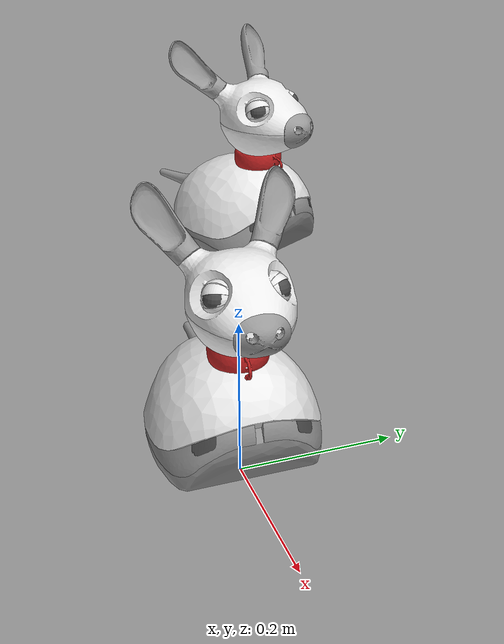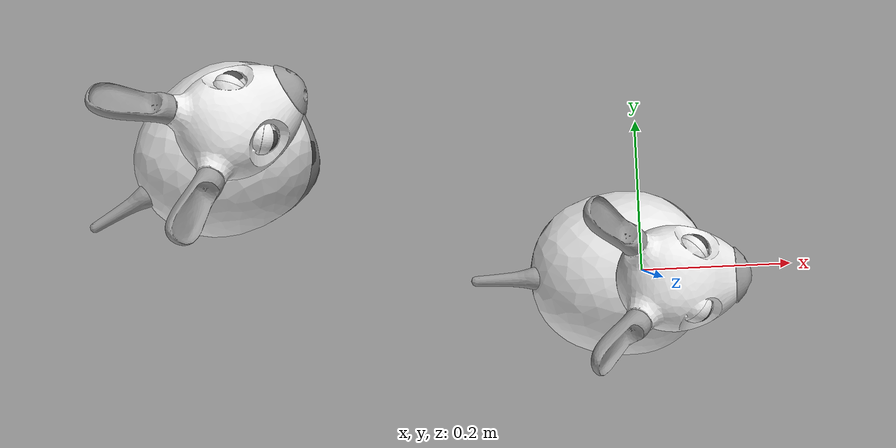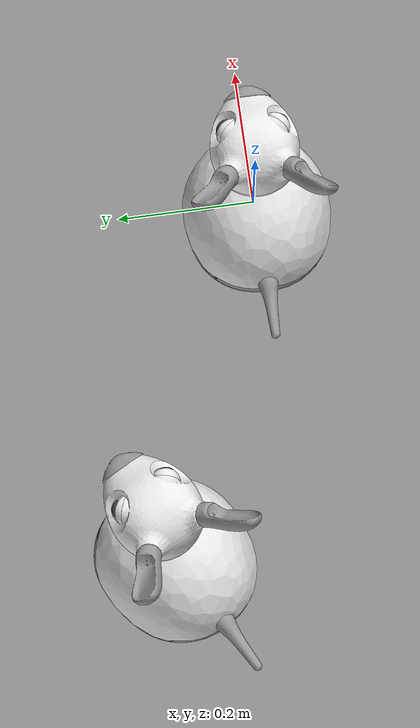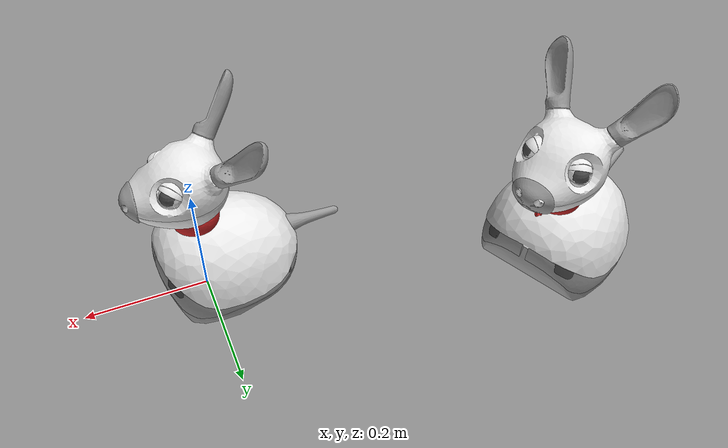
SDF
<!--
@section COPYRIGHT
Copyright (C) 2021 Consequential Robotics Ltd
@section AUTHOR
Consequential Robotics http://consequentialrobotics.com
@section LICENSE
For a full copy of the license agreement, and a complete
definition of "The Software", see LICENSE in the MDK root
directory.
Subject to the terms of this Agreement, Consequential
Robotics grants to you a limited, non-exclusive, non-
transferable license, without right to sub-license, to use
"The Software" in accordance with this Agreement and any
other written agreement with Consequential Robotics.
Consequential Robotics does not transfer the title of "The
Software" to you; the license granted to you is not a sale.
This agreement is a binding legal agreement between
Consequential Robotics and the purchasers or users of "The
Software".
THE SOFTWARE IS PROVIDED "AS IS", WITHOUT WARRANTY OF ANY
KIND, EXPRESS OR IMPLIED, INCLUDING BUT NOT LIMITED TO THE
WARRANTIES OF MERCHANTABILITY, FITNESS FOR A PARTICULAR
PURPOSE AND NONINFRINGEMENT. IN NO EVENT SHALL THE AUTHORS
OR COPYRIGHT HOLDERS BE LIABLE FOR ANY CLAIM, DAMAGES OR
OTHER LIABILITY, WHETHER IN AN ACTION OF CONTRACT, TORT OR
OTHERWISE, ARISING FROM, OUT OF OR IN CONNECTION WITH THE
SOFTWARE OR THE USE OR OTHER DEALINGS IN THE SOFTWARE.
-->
<sdf version="1.5">
 <world name="default">
  <physics name="default_physics" default="0" type="ode">
   <max_step_size>0.001</max_step_size>
   <real_time_factor>1</real_time_factor>
   <real_time_update_rate>1000</real_time_update_rate>
  </physics>
  <scene><ambient>0.4 0.4 0.4 1</ambient><background>0.7 0.7 0.7 1</background><shadows>0</shadows></scene>
  <light name="sun" type="directional">
   <pose>0 0 10 0 -0 0</pose>
   <diffuse>0.8 0.8 0.8 1</diffuse>
   <specular>0.1 0.1 0.1 1</specular>
   <attenuation>
    <range>1000</range>
    <constant>0.9</constant>
    <linear>0.01</linear>
    <quadratic>0.001</quadratic>
   </attenuation>
   <direction>-0.5 0.5 -1</direction>
  </light>
  <include><name>parent</name><uri>model://miro_model</uri></include>
  <include><name>child</name><uri>model://miro_model</uri><pose>-0.5 0.2 0.05 0 0 0.5</pose></include>
  <gravity>0 0 -9.8</gravity>
  <magnetic_field>6e-06 2.3e-05 -4.2e-05</magnetic_field>
  <atmosphere type="adiabatic"/>
  <spherical_coordinates>
   <surface_model>EARTH_WGS84</surface_model>
   <latitude_deg>0</latitude_deg>
   <longitude_deg>0</longitude_deg>
   <elevation>0</elevation>
   <heading_deg>0</heading_deg>
  </spherical_coordinates>
 </world>
</sdf>

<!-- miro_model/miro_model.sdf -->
<sdf version="1.5">
	<model name="miro">

		<include>
			<uri>model://miro_model/components/miro_body</uri>
			<pose>0 0 0 0 0 0</pose>
		</include>

		<include>
			<uri>model://miro_model/components/miro_tail</uri>
			<pose>0 0 0 0 0 0</pose>
		</include>

		<joint type="revolute" name="body_neck">
			<pose>-0.002 0 0.081 0 0 0</pose>
			<parent>miro_body::body</parent>
			<child>miro_neck::neck</child>
			<axis>
				<xyz>0 1 0</xyz>
				<limit>
					<lower>0</lower>
					<upper>1.57</upper>
				</limit>
				<dynamics>
					<spring_stiffness>0.4</spring_stiffness>
					<spring_reference>0.0</spring_reference>
					<friction>0.01</friction>
					<damping>0.1</damping>
				</dynamics>
			</axis>
		</joint>

		<include>
			<uri>model://miro_model/components/miro_neck</uri>
			<pose>0 0 0 0 0 0</pose>
		</include>

		<joint type="revolute" name="neck_gmbl">
			<pose>-0.002 0 0.201 0 0 0</pose>
			<parent>miro_neck::neck</parent>
			<child>miro_gmbl::gmbl</child>
			<axis>
				<xyz>0 0 1</xyz>
				<limit>
					<lower>-1.57</lower>
					<upper>1.57</upper>
				</limit>
				<dynamics>
					<friction>0.01</friction>
					<damping>0.1</damping>
				</dynamics>
			</axis>
		</joint>

		<include>
			<uri>model://miro_model/components/miro_gmbl</uri>
			<pose>0 0 0 0 0 0</pose>
		</include>

		<joint type="revolute" name="gmbl_head">
			<pose>-0.002 0 0.201 0 0 0</pose>
			<parent>miro_gmbl::gmbl</parent>
			<child>miro_head::head</child>
			<axis>
				<xyz>0 1 0</xyz>
				<limit>
					<lower>-1.57</lower>
					<upper>1.57</upper>
				</limit>
				<dynamics>
					<spring_stiffness>0.1</spring_stiffness>
					<spring_reference>-0.5</spring_reference>
					<friction>0.01</friction>
					<damping>0.1</damping>
				</dynamics>
			</axis>
		</joint>

		<include>
			<uri>model://miro_model/components/miro_head</uri>
			<pose>0 0 0 0 0 0</pose>
		</include>

		<plugin name="miro_model" filename="libmiro_gazebo.so"/>

	</model>
</sdf>

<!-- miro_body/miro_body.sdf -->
<sdf version="1.5">
	<model name="miro_body">
		<link name="body">
			<inertial>
				<pose>-0.060 0 0.050 0 0 0</pose>
				<mass>1.570796</mass>
				<inertia>
					<ixx>0.00523599</ixx>
					<ixy>0.0</ixy>
					<ixz>0.0</ixz>
					<iyy>0.00523599</iyy>
					<iyz>0.0</iyz>
					<izz>0.00785398</izz>
				</inertia>
			</inertial>
			<visual name="visual_valance">
				<pose>0 0 0 0 0 0</pose>
				<geometry>
					<mesh>
						<uri>model://miro_model/meshes/valance.dae</uri>
					</mesh>
				</geometry>
				<material>
					<script>
						<uri>file://media/materials/scripts/gazebo.material</uri>
						<name>Gazebo/Grey</name>
					</script>
				</material>
			</visual>
			<collision name="collision_valance">
				<pose>0 0 0 0 0 0</pose>
				<geometry>
					<mesh>
						<uri>model://miro_model/meshes/valance_collision.dae</uri>
					</mesh>
				</geometry>
				<surface>
					<friction>
						<ode>
							<mu>0.1</mu>
							<mu2>0.1</mu2>
						</ode>
					</friction>
				</surface>
			</collision>
			<visual name="visual_skirt_lh">
				<pose>0 0 0 0 0 0</pose>
				<geometry>
					<mesh>
						<uri>model://miro_model/meshes/skirt_lh.dae</uri>
					</mesh>
				</geometry>
				<material>
					<script>
						<uri>file://media/materials/scripts/gazebo.material</uri>
						<name>Gazebo/Grey</name>
					</script>
				</material>
			</visual>
			<visual name="visual_skirt_rh">
				<pose>0 0 0 0 0 0</pose>
				<geometry>
					<mesh>
						<uri>model://miro_model/meshes/skirt_rh.dae</uri>
					</mesh>
				</geometry>
				<material>
					<script>
						<uri>file://media/materials/scripts/gazebo.material</uri>
						<name>Gazebo/Grey</name>
					</script>
				</material>
			</visual>
			<visual name="visual_cliff_sensor_L_asm">
				<pose>0 0 0 0 0 0</pose>
				<geometry>
					<mesh>
						<uri>model://miro_model/meshes/cliff_sensor_L_asm.dae</uri>
					</mesh>
				</geometry>
				<material>
					<script>
						<uri>file://media/materials/scripts/gazebo.material</uri>
						<name>Gazebo/DarkGrey</name>
					</script>
				</material>
			</visual>
			<visual name="visual_cliff_sensor_R_asm">
				<pose>0 0 0 0 0 0</pose>
				<geometry>
					<mesh>
						<uri>model://miro_model/meshes/cliff_sensor_R_asm.dae</uri>
					</mesh>
				</geometry>
				<material>
					<script>
						<uri>file://media/materials/scripts/gazebo.material</uri>
						<name>Gazebo/DarkGrey</name>
					</script>
				</material>
			</visual>
			<visual name="visual_light_sensor_holder_asm_L">
				<pose>0 0 0 0 0 0</pose>
				<geometry>
					<mesh>
						<uri>model://miro_model/meshes/light_sensor_holder_asm_L.dae</uri>
					</mesh>
				</geometry>
				<material>
					<script>
						<uri>file://media/materials/scripts/gazebo.material</uri>
						<name>Gazebo/DarkGrey</name>
					</script>
				</material>
			</visual>
			<visual name="visual_light_sensor_holder_asm_R">
				<pose>0 0 0 0 0 0</pose>
				<geometry>
					<mesh>
						<uri>model://miro_model/meshes/light_sensor_holder_asm_R.dae</uri>
					</mesh>
				</geometry>
				<material>
					<script>
						<uri>file://media/materials/scripts/gazebo.material</uri>
						<name>Gazebo/DarkGrey</name>
					</script>
				</material>
			</visual>
			<visual name="visual_body_shell">
				<pose>0 0 0 0 0 0</pose>
				<geometry>
					<mesh>
						<uri>model://miro_model/meshes/body_shell.dae</uri>
					</mesh>
				</geometry>
				<material>
					<script>
						<uri>file://media/materials/scripts/gazebo.material</uri>
						<name>Gazebo/White</name>
					</script>
				</material>
			</visual>
			<collision name="collision_body_shell">
				<pose>0 0 0 0 0 0</pose>
				<geometry>
					<mesh>
						<uri>model://miro_model/meshes/body_shell_collision.dae</uri>
					</mesh>
				</geometry>
				<surface>
					<friction>
						<ode>
							<mu>0.1</mu>
							<mu2>0.1</mu2>
						</ode>
					</friction>
				</surface>
			</collision>
			<visual name="visual_slider">
				<pose>0 0 0 0 0 0</pose>
				<geometry>
					<mesh>
						<uri>model://miro_model/meshes/slider.dae</uri>
					</mesh>
				</geometry>
				<material>
					<script>
						<uri>file://media/materials/scripts/gazebo.material</uri>
						<name>Gazebo/DarkGrey</name>
					</script>
				</material>
			</visual>
			<collision name="collision_slider">
				<pose>-0.1075 0 0.0264 0 0 0</pose>
				<geometry>
					<sphere>
						<radius>0.015</radius>
					</sphere>
				</geometry>
				<surface>
					<friction>
						<ode>
							<mu>0.01</mu>
							<mu2>0.01</mu2>
						</ode>
					</friction>
				</surface>
			</collision>
			<!-- imu -->
			<sensor name="acc_body" type="imu">
				<pose>0 0 0 0 0 0</pose>
				<always_on>1</always_on>
				<update_rate>50</update_rate>
				<visualize>false</visualize>
			</sensor>
			<!-- cliff -->
			<sensor name="cliff_l" type="sonar">
				<pose>0.062 0.055 0.085 0 -0.52 0</pose>
				<always_on>1</always_on>
				<update_rate>50</update_rate>
				<visualize>false</visualize>
				<sonar>
					<min>0.0</min>
					<max>0.5</max>
					<radius>0.025</radius>
				</sonar>
			</sensor>
			<!-- cliff -->
			<sensor name="cliff_r" type="sonar">
				<pose>0.062 -0.055 0.085 0 -0.52 0</pose>
				<always_on>1</always_on>
				<update_rate>50</update_rate>
				<visualize>false</visualize>
				<sonar>
					<min>0.0</min>
					<max>0.5</max>
					<radius>0.025</radius>
				</sonar>
			</sensor>
			<!-- light -->
			<sensor name="lightfl" type="camera">
				<pose>0.055 0.065 0.08 0 -0.06 0.52</pose>
				<camera>
					<horizontal_fov>1.57</horizontal_fov>
					<image>
						<width>16</width>
						<height>12</height>
					</image>
					<clip>
						<near>0.01</near>
						<far>10</far>
					</clip>
				</camera>
				<always_on>1</always_on>
				<update_rate>5</update_rate>
				<visualize>false</visualize>
			</sensor>
			<!-- light -->
			<sensor name="lightfr" type="camera">
				<pose>0.055 -0.065 0.08 0 -0.06 -0.52</pose>
				<camera>
					<horizontal_fov>1.57</horizontal_fov>
					<image>
						<width>16</width>
						<height>12</height>
					</image>
					<clip>
						<near>0.01</near>
						<far>10</far>
					</clip>
				</camera>
				<always_on>1</always_on>
				<update_rate>5</update_rate>
				<visualize>false</visualize>
			</sensor>
			<!-- light -->
			<sensor name="lightrl" type="camera">
				<pose>-0.125 0.072 0.06 0 -0.26 2.61</pose>
				<camera>
					<horizontal_fov>1.57</horizontal_fov>
					<image>
						<width>16</width>
						<height>12</height>
					</image>
					<clip>
						<near>0.01</near>
						<far>10</far>
					</clip>
				</camera>
				<always_on>1</always_on>
				<update_rate>5</update_rate>
				<visualize>false</visualize>
			</sensor>
			<!-- light -->
			<sensor name="lightrr" type="camera">
				<pose>-0.125 -0.072 0.06 0 -0.26 -2.61</pose>
				<camera>
					<horizontal_fov>1.57</horizontal_fov>
					<image>
						<width>16</width>
						<height>12</height>
					</image>
					<clip>
						<near>0.01</near>
						<far>10</far>
					</clip>
				</camera>
				<always_on>1</always_on>
				<update_rate>5</update_rate>
				<visualize>false</visualize>
			</sensor>
		</link>
		<link name="wheel_lh">
			<inertial>
				<pose>0.000630 0.077790 0.044838 0 0 0</pose>
				<mass>0.134041</mass>
				<inertia>
					<ixx>0.00014298</ixx>
					<ixy>0.0</ixy>
					<ixz>0.0</ixz>
					<iyy>0.00014298</iyy>
					<iyz>0.0</iyz>
					<izz>0.00014298</izz>
				</inertia>
			</inertial>
			<visual name="visual_wheel_tyre_lh">
				<pose>0 0 0 0 0 0</pose>
				<geometry>
					<mesh>
						<uri>model://miro_model/meshes/wheel_tyre_lh.dae</uri>
					</mesh>
				</geometry>
				<material>
					<script>
						<uri>file://media/materials/scripts/gazebo.material</uri>
						<name>Gazebo/DarkGrey</name>
					</script>
				</material>
			</visual>
			<collision name="collision_wheel_tyre_lh">
				<pose>0.000630 0.077790 0.044838 -1.5446 0 0</pose>
				<geometry>
					<cylinder>
						<radius>0.045</radius>
						<length>0.002</length>
					</cylinder>
				</geometry>
				<surface>
					<friction>
						<ode>
							<mu>1</mu>
							<mu2>1</mu2>
						</ode>
					</friction>
				</surface>
			</collision>
			<visual name="visual_wheel_rim_lh">
				<pose>0 0 0 0 0 0</pose>
				<geometry>
					<mesh>
						<uri>model://miro_model/meshes/wheel_rim_lh.dae</uri>
					</mesh>
				</geometry>
				<material>
					<script>
						<uri>file://media/materials/scripts/gazebo.material</uri>
						<name>Gazebo/Grey</name>
					</script>
				</material>
			</visual>
		</link>
		<link name="wheel_rh">
			<inertial>
				<pose>0.000630 -0.077790 0.044838 0 0 0</pose>
				<mass>0.134041</mass>
				<inertia>
					<ixx>0.00014298</ixx>
					<ixy>0.0</ixy>
					<ixz>0.0</ixz>
					<iyy>0.00014298</iyy>
					<iyz>0.0</iyz>
					<izz>0.00014298</izz>
				</inertia>
			</inertial>
			<visual name="visual_wheel_tyre_rh">
				<pose>0 0 0 0 0 0</pose>
				<geometry>
					<mesh>
						<uri>model://miro_model/meshes/wheel_tyre_rh.dae</uri>
					</mesh>
				</geometry>
				<material>
					<script>
						<uri>file://media/materials/scripts/gazebo.material</uri>
						<name>Gazebo/DarkGrey</name>
					</script>
				</material>
			</visual>
			<collision name="collision_wheel_tyre_rh">
				<pose>0.000630 -0.077790 0.044838 1.5446 0 0</pose>
				<geometry>
					<cylinder>
						<radius>0.045</radius>
						<length>0.002</length>
					</cylinder>
				</geometry>
				<surface>
					<friction>
						<ode>
							<mu>1</mu>
							<mu2>1</mu2>
						</ode>
					</friction>
				</surface>
			</collision>
			<visual name="visual_wheel_rim_rh">
				<pose>0 0 0 0 0 0</pose>
				<geometry>
					<mesh>
						<uri>model://miro_model/meshes/wheel_rim_rh.dae</uri>
					</mesh>
				</geometry>
				<material>
					<script>
						<uri>file://media/materials/scripts/gazebo.material</uri>
						<name>Gazebo/Grey</name>
					</script>
				</material>
			</visual>
		</link>
		<joint type="revolute" name="body_wheel_lh">
			<pose>0.000630 0.077790 0.044838 0 0 0</pose>
			<parent>body</parent>
			<child>wheel_lh</child>
			<axis>
				<xyz>0 0.999657 0.026185</xyz>
				<dynamics>
					<friction>0.1</friction>
					<damping>0.1</damping>
				</dynamics>
			</axis>
		</joint>
		<joint type="revolute" name="body_wheel_rh">
			<pose>0.000630 -0.077790 0.044838 0 0 0</pose>
			<parent>body</parent>
			<child>wheel_rh</child>
			<axis>
				<xyz>0 0.999657 -0.026185</xyz>
				<dynamics>
					<friction>0.1</friction>
					<damping>0.1</damping>
				</dynamics>
			</axis>
		</joint>
	</model>
</sdf>

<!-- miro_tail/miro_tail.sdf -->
<sdf version="1.5">
	<model name="miro_tail">
		<link name="tail_gmbl">
			<inertial>
				<pose>-0.143 0 0.085 0 0 0</pose>
				<mass>0.056549</mass>
				<inertia>
					<ixx>0.00003393</ixx>
					<ixy>0.0</ixy>
					<ixz>0.0</ixz>
					<iyy>0.00003393</iyy>
					<iyz>0.0</iyz>
					<izz>0.00003393</izz>
				</inertia>
			</inertial>
		</link>
		<joint type="revolute" name="body_tail_gmbl">
			<pose>-0.143 0 0.085 0 0 0</pose>
			<parent>miro_body::body</parent>
			<child>miro_tail::tail_gmbl</child>
			<axis>
				<xyz>0 1 0</xyz>
				<limit>
					<lower>-1.57</lower>
					<upper>1.57</upper>
				</limit>
				<dynamics>
					<friction>0.01</friction>
					<damping>0.02</damping>
				</dynamics>
			</axis>
		</joint>
		<link name="tail">
			<inertial>
				<pose>-0.143 0 0.085 0 0 0</pose>
				<mass>0.056549</mass>
				<inertia>
					<ixx>0.00003393</ixx>
					<ixy>0.0</ixy>
					<ixz>0.0</ixz>
					<iyy>0.00003393</iyy>
					<iyz>0.0</iyz>
					<izz>0.00003393</izz>
				</inertia>
			</inertial>
			<visual name="visual_tail">
				<pose>0 0 0 0 0 0</pose>
				<geometry>
					<mesh>
						<uri>model://miro_model/meshes/tail.dae</uri>
					</mesh>
				</geometry>
				<material>
					<script>
						<uri>file://media/materials/scripts/gazebo.material</uri>
						<name>Gazebo/Grey</name>
					</script>
				</material>
			</visual>
			<collision name="collision_tail">
				<pose>0 0 0 0 0 0</pose>
				<geometry>
					<mesh>
						<uri>model://miro_model/meshes/tail_collision.dae</uri>
					</mesh>
				</geometry>
				<surface>
					<friction>
						<ode>
							<mu>0.1</mu>
							<mu2>0.1</mu2>
						</ode>
					</friction>
				</surface>
			</collision>
		</link>
		<joint type="revolute" name="tail_gmbl_tail">
			<pose>-0.143 0 0.085 0 0 0</pose>
			<parent>miro_tail::tail_gmbl</parent>
			<child>miro_tail::tail</child>
			<axis>
				<xyz>0 0 1</xyz>
				<limit>
					<lower>-1.57</lower>
					<upper>1.57</upper>
				</limit>
				<dynamics>
					<friction>0.01</friction>
					<damping>0.02</damping>
				</dynamics>
			</axis>
		</joint>
	</model>
</sdf>

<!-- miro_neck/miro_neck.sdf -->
<sdf version="1.5">
	<model name="miro_neck">
		<link name="neck">
			<inertial>
				<pose>-0.002 0 0.141 0 0 0</pose>
				<mass>0.075398</mass>
				<inertia>
					<ixx>0.00009802</ixx>
					<ixy>0.0</ixy>
					<ixz>0.0</ixz>
					<iyy>0.00009802</iyy>
					<iyz>0.0</iyz>
					<izz>0.00001508</izz>
				</inertia>
			</inertial>
		</link>
	</model>
</sdf>

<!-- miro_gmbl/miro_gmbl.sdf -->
<sdf version="1.5">
	<model name="miro_gmbl">
		<link name="gmbl">
			<inertial>
				<pose>-0.002 0 0.171 0 0 0</pose>
				<mass>0.039270</mass>
				<inertia>
					<ixx>0.00002487</ixx>
					<ixy>0.0</ixy>
					<ixz>0.0</ixz>
					<iyy>0.00002487</iyy>
					<iyz>0.0</iyz>
					<izz>0.00004909</izz>
				</inertia>
			</inertial>
			<visual name="visual_collar">
				<pose>0 0 0 0 0 0</pose>
				<geometry>
					<mesh>
						<uri>model://miro_model/meshes/collar.dae</uri>
					</mesh>
				</geometry>
				<material>
					<script>
						<uri>file://media/materials/scripts/gazebo.material</uri>
						<name>Gazebo/Red</name>
					</script>
				</material>
			</visual>
		</link>
	</model>
</sdf>

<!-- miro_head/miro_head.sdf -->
<sdf version="1.5">
	<model name="miro_head">
		<link name="head">
			<inertial>
				<pose>-0.002 0 0.221 0 0 0</pose>
				<mass>0.261799</mass>
				<inertia>
					<ixx>0.00043633</ixx>
					<ixy>0.0</ixy>
					<ixz>0.0</ixz>
					<iyy>0.00043633</iyy>
					<iyz>0.0</iyz>
					<izz>0.00043633</izz>
				</inertia>
			</inertial>
			<visual name="visual_head_lower">
				<pose>0 0 0 0 0 0</pose>
				<geometry>
					<mesh>
						<uri>model://miro_model/meshes/head_lower.dae</uri>
					</mesh>
				</geometry>
				<material>
					<script>
						<uri>file://media/materials/scripts/gazebo.material</uri>
						<name>Gazebo/White</name>
					</script>
				</material>
			</visual>
			<collision name="collision_head_lower">
				<pose>0 0 0 0 0 0</pose>
				<geometry>
					<mesh>
						<uri>model://miro_model/meshes/head_lower_collision.dae</uri>
					</mesh>
				</geometry>
				<surface>
					<friction>
						<ode>
							<mu>0.1</mu>
							<mu2>0.1</mu2>
						</ode>
					</friction>
				</surface>
			</collision>
			<visual name="visual_head_upper">
				<pose>0 0 0 0 0 0</pose>
				<geometry>
					<mesh>
						<uri>model://miro_model/meshes/head_upper.dae</uri>
					</mesh>
				</geometry>
				<material>
					<script>
						<uri>file://media/materials/scripts/gazebo.material</uri>
						<name>Gazebo/White</name>
					</script>
				</material>
			</visual>
			<collision name="collision_head_upper">
				<pose>0 0 0 0 0 0</pose>
				<geometry>
					<mesh>
						<uri>model://miro_model/meshes/head_upper_collision.dae</uri>
					</mesh>
				</geometry>
				<surface>
					<friction>
						<ode>
							<mu>0.1</mu>
							<mu2>0.1</mu2>
						</ode>
					</friction>
				</surface>
			</collision>
			<visual name="visual_eyelid_lower_lh">
				<pose>0 0 0 0 0 0</pose>
				<geometry>
					<mesh>
						<uri>model://miro_model/meshes/eyelid_lower_lh.dae</uri>
					</mesh>
				</geometry>
				<material>
					<script>
						<uri>file://media/materials/scripts/gazebo.material</uri>
						<name>Gazebo/White</name>
					</script>
				</material>
			</visual>
			<visual name="visual_eyelid_lower_rh">
				<pose>0 0 0 0 0 0</pose>
				<geometry>
					<mesh>
						<uri>model://miro_model/meshes/eyelid_lower_rh.dae</uri>
					</mesh>
				</geometry>
				<material>
					<script>
						<uri>file://media/materials/scripts/gazebo.material</uri>
						<name>Gazebo/White</name>
					</script>
				</material>
			</visual>
			<visual name="visual_nose">
				<pose>0 0 0 0 0 0</pose>
				<geometry>
					<mesh>
						<uri>model://miro_model/meshes/nose.dae</uri>
					</mesh>
				</geometry>
				<material>
					<script>
						<uri>file://media/materials/scripts/gazebo.material</uri>
						<name>Gazebo/Grey</name>
					</script>
				</material>
			</visual>
			<collision name="collision_nose">
				<pose>0 0 0 0 0 0</pose>
				<geometry>
					<mesh>
						<uri>model://miro_model/meshes/nose_collision.dae</uri>
					</mesh>
				</geometry>
				<surface>
					<friction>
						<ode>
							<mu>0.3</mu>
							<mu2>0.3</mu2>
						</ode>
					</friction>
				</surface>
			</collision>
			<visual name="visual_1">
				<pose>0.029 0.033 0.252 0 0 0</pose>
				<geometry>
					<sphere>
						<radius>0.018</radius>
					</sphere>
				</geometry>
				<material>
					<script>
						<uri>file://media/materials/scripts/gazebo.material</uri>
						<name>Gazebo/White</name>
					</script>
				</material>
			</visual>
			<visual name="visual_2">
				<pose>0.0315 0.036 0.254 0 0 0</pose>
				<geometry>
					<sphere>
						<radius>0.015</radius>
					</sphere>
				</geometry>
				<material>
					<script>
						<uri>file://media/materials/scripts/gazebo.material</uri>
						<name>Gazebo/DarkGrey</name>
					</script>
				</material>
			</visual>
			<visual name="visual_3">
				<pose>0.029 -0.033 0.252 0 0 0</pose>
				<geometry>
					<sphere>
						<radius>0.018</radius>
					</sphere>
				</geometry>
				<material>
					<script>
						<uri>file://media/materials/scripts/gazebo.material</uri>
						<name>Gazebo/White</name>
					</script>
				</material>
			</visual>
			<visual name="visual_4">
				<pose>0.0315 -0.036 0.254 0 0 0</pose>
				<geometry>
					<sphere>
						<radius>0.015</radius>
					</sphere>
				</geometry>
				<material>
					<script>
						<uri>file://media/materials/scripts/gazebo.material</uri>
						<name>Gazebo/DarkGrey</name>
					</script>
				</material>
			</visual>
			<!-- eye_l -->
			<sensor name="eye_l" type="wideanglecamera">
				<!-- pose position come from miro_software_constants.h -->
				<!-- pose angles come from dev/sim_camera_calib -->
				<pose>0.0377 0.0431 0.2595 -0.4262 -0.6816 0.6244</pose>
				<camera>
					<horizontal_fov>2.0944</horizontal_fov>
					<image>
						<width>1280</width>
						<height>720</height>
					</image>
					<clip>
						<!-- clip at short range to eliminate eyelid from view -->
						<near>0.006</near>
						<far>100</far>
					</clip>
					<lens>
						<type>custom</type>
						<scale_to_hfov>1</scale_to_hfov>
						<custom_function>
							<c1>2.0</c1>
							<c2>1.25</c2>
							<c3>0.0</c3>
							<f>1.0</f>
							<fun>sin</fun>
						</custom_function>
					</lens>
				</camera>
				<always_on>1</always_on>
				<update_rate>10</update_rate>
				<visualize>false</visualize>
			</sensor>
			<!-- eye_r -->
			<sensor name="eye_r" type="wideanglecamera">
				<pose>0.0377 -0.0431 0.2595 0.4261 -0.6816 -0.6244</pose>
				<camera>
					<horizontal_fov>2.0944</horizontal_fov>
					<image>
						<width>1280</width>
						<height>720</height>
					</image>
					<clip>
						<near>0.006</near>
						<far>100</far>
					</clip>
					<lens>
						<type>custom</type>
						<scale_to_hfov>1</scale_to_hfov>
						<custom_function>
							<c1>2.0</c1>
							<c2>1.25</c2>
							<c3>0.0</c3>
							<f>1.0</f>
							<fun>sin</fun>
						</custom_function>
					</lens>
				</camera>
				<always_on>1</always_on>
				<update_rate>10</update_rate>
				<visualize>false</visualize>
			</sensor>
			<!-- eye_l narrow -->
			<sensor name="eye_l_narrow" type="camera">
				<!-- pose position come from miro_software_constants.h -->
				<!-- pose angles come from dev/sim_camera_calib -->
				<pose>0.0377 0.0431 0.2595 -0.4262 -0.6816 0.6244</pose>
				<camera>
					<horizontal_fov>2.0944</horizontal_fov>
					<image>
						<width>1280</width>
						<height>720</height>
					</image>
					<clip>
						<!-- clip at short range to eliminate eyelid from view -->
						<near>0.006</near>
						<far>100</far>
					</clip>
				</camera>
				<always_on>1</always_on>
				<update_rate>10</update_rate>
				<visualize>false</visualize>
			</sensor>
			<!-- eye_r_narrow -->
			<sensor name="eye_r_narrow" type="camera">
				<pose>0.0377 -0.0431 0.2595 0.4261 -0.6816 -0.6244</pose>
				<camera>
					<horizontal_fov>2.0944</horizontal_fov>
					<image>
						<width>1280</width>
						<height>720</height>
					</image>
					<clip>
						<near>0.006</near>
						<far>100</far>
					</clip>
				</camera>
				<always_on>1</always_on>
				<update_rate>10</update_rate>
				<visualize>false</visualize>
			</sensor>
			<!-- gaze -->
			<sensor name="gaze" type="camera">
				<pose>0.0577 0 0.2795 0 -0.785398 0</pose>
				<camera>
					<horizontal_fov>1.0</horizontal_fov>
					<image>
						<width>1280</width>
						<height>720</height>
					</image>
					<clip>
						<near>0.001</near>
						<far>100</far>
					</clip>
				</camera>
				<always_on>1</always_on>
				<update_rate>10</update_rate>
				<visualize>false</visualize>
			</sensor>
			<!-- overhead -->
			<sensor name="overhead" type="camera">
				<pose>0 0 1.0 0 1.22 0</pose>
				<camera>
					<horizontal_fov>1.0472</horizontal_fov>
					<image>
						<width>1280</width>
						<height>720</height>
					</image>
					<clip>
						<near>0.01</near>
						<far>2</far>
					</clip>
				</camera>
				<always_on>1</always_on>
				<update_rate>10</update_rate>
				<visualize>false</visualize>
			</sensor>
			<!-- imu -->
			<sensor name="acc_head" type="imu">
				<pose>0 0 0 0 0 0</pose>
				<always_on>1</always_on>
				<update_rate>50</update_rate>
				<visualize>false</visualize>
			</sensor>
			<!-- sonar -->
			<sensor name="sonar" type="sonar">
				<pose>0.1 0 0.235 0 -1.5708 0</pose>
				<always_on>1</always_on>
				<update_rate>50</update_rate>
				<visualize>false</visualize>
				<sonar>
					<min>0.0</min>
					<max>1.0</max>
					<radius>0.309</radius>
				</sonar>
			</sensor>
		</link>
		<link name="eyelid_lh">
			<inertial>
				<pose>0.029 0.032 0.252 0 0 0</pose>
				<mass>0.016755</mass>
				<inertia>
					<ixx>0.00000447</ixx>
					<ixy>0.0</ixy>
					<ixz>0.0</ixz>
					<iyy>0.00000447</iyy>
					<iyz>0.0</iyz>
					<izz>0.00000447</izz>
				</inertia>
			</inertial>
			<visual name="visual_eyelid_lh">
				<pose>0 0 0 0 0 0</pose>
				<geometry>
					<mesh>
						<uri>model://miro_model/meshes/eyelid_lh.dae</uri>
					</mesh>
				</geometry>
				<material>
					<script>
						<uri>file://media/materials/scripts/gazebo.material</uri>
						<name>Gazebo/White</name>
					</script>
				</material>
			</visual>
		</link>
		<link name="eyelid_rh">
			<inertial>
				<pose>0.029 -0.032 0.252 0 0 0</pose>
				<mass>0.016755</mass>
				<inertia>
					<ixx>0.00000447</ixx>
					<ixy>0.0</ixy>
					<ixz>0.0</ixz>
					<iyy>0.00000447</iyy>
					<iyz>0.0</iyz>
					<izz>0.00000447</izz>
				</inertia>
			</inertial>
			<visual name="visual_eyelid_rh">
				<pose>0 0 0 0 0 0</pose>
				<geometry>
					<mesh>
						<uri>model://miro_model/meshes/eyelid_rh.dae</uri>
					</mesh>
				</geometry>
				<material>
					<script>
						<uri>file://media/materials/scripts/gazebo.material</uri>
						<name>Gazebo/White</name>
					</script>
				</material>
			</visual>
		</link>
		<!-- joint axes are from "eyelid axes.txt" in FreeCAD source folder -->
		<joint type="revolute" name="head_eyelid_lh">
			<pose>0.029 0.032 0.252 0 0 0</pose>
			<parent>head</parent>
			<child>eyelid_lh</child>
			<axis>
				<xyz>-0.675 0.675 -0.2978</xyz>
				<limit>
					<lower>-1.57</lower>
					<upper>1.57</upper>
				</limit>
				<dynamics>
					<friction>0.1</friction>
					<damping>0.1</damping>
					<spring_reference>-0.5</spring_reference>
					<spring_stiffness>0.02</spring_stiffness>
				</dynamics>
			</axis>
			<physics>
				<ode>
					<cfm_damping>true</cfm_damping>
					<implicit_spring_damper>true</implicit_spring_damper>
				</ode>
			</physics>
		</joint>
		<joint type="revolute" name="head_eyelid_rh">
			<pose>0.029 -0.032 0.252 0 0 0</pose>
			<parent>head</parent>
			<child>eyelid_rh</child>
			<axis>
				<xyz>0.675 0.675 0.2978</xyz>
				<limit>
					<lower>-1.57</lower>
					<upper>1.57</upper>
				</limit>
				<dynamics>
					<friction>0.1</friction>
					<damping>0.1</damping>
					<spring_reference>-0.5</spring_reference>
					<spring_stiffness>0.02</spring_stiffness>
				</dynamics>
			</axis>
			<physics>
				<ode>
					<cfm_damping>true</cfm_damping>
					<implicit_spring_damper>true</implicit_spring_damper>
				</ode>
			</physics>
		</joint>
		<link name="ear_lh">
			<inertial>
				<pose>-0.0437 0.0474 0.2773 0 0 0</pose>
				<mass>0.056549</mass>
				<inertia>
					<ixx>0.00003393</ixx>
					<ixy>0.0</ixy>
					<ixz>0.0</ixz>
					<iyy>0.00003393</iyy>
					<iyz>0.0</iyz>
					<izz>0.00003393</izz>
				</inertia>
			</inertial>
			<visual name="visual_ear_lh">
				<pose>0 0 0 0 0 0</pose>
				<geometry>
					<mesh>
						<uri>model://miro_model/meshes/ear_lh.dae</uri>
					</mesh>
				</geometry>
				<material>
					<script>
						<uri>file://media/materials/scripts/gazebo.material</uri>
						<name>Gazebo/Grey</name>
					</script>
				</material>
			</visual>
			<collision name="collision_ear_lh">
				<pose>0 0 0 0 0 0</pose>
				<geometry>
					<mesh>
						<uri>model://miro_model/meshes/ear_lh_collision.dae</uri>
					</mesh>
				</geometry>
				<surface>
					<friction>
						<ode>
							<mu>0.3</mu>
							<mu2>0.3</mu2>
						</ode>
					</friction>
				</surface>
			</collision>
		</link>
		<link name="ear_rh">
			<inertial>
				<pose>-0.0437 -0.0474 0.2773 0 0 0</pose>
				<mass>0.056549</mass>
				<inertia>
					<ixx>0.00003393</ixx>
					<ixy>0.0</ixy>
					<ixz>0.0</ixz>
					<iyy>0.00003393</iyy>
					<iyz>0.0</iyz>
					<izz>0.00003393</izz>
				</inertia>
			</inertial>
			<visual name="visual_ear_rh">
				<pose>0 0 0 0 0 0</pose>
				<geometry>
					<mesh>
						<uri>model://miro_model/meshes/ear_rh.dae</uri>
					</mesh>
				</geometry>
				<material>
					<script>
						<uri>file://media/materials/scripts/gazebo.material</uri>
						<name>Gazebo/Grey</name>
					</script>
				</material>
			</visual>
			<collision name="collision_ear_rh">
				<pose>0 0 0 0 0 0</pose>
				<geometry>
					<mesh>
						<uri>model://miro_model/meshes/ear_rh_collision.dae</uri>
					</mesh>
				</geometry>
				<surface>
					<friction>
						<ode>
							<mu>0.3</mu>
							<mu2>0.3</mu2>
						</ode>
					</friction>
				</surface>
			</collision>
		</link>
		<joint type="revolute" name="head_ear_lh">
			<pose>-0.0437 0.0474 0.2773 0 0 0</pose>
			<parent>head</parent>
			<child>ear_lh</child>
			<axis>
				<xyz>-0.5730 0.4344 0.6949</xyz>
				<limit>
					<lower>-1.57</lower>
					<upper>1.57</upper>
				</limit>
				<dynamics>
					<friction>0.01</friction>
					<damping>0.001</damping>
				</dynamics>
			</axis>
		</joint>
		<joint type="revolute" name="head_ear_rh">
			<pose>-0.0437 -0.0474 0.2773 0 0 0</pose>
			<parent>head</parent>
			<child>ear_rh</child>
			<axis>
				<xyz>-0.5730 -0.4344 0.6949</xyz>
				<limit>
					<lower>-1.57</lower>
					<upper>1.57</upper>
				</limit>
				<dynamics>
					<friction>0.01</friction>
					<damping>0.001</damping>
				</dynamics>
			</axis>
		</joint>
	</model>
</sdf>
